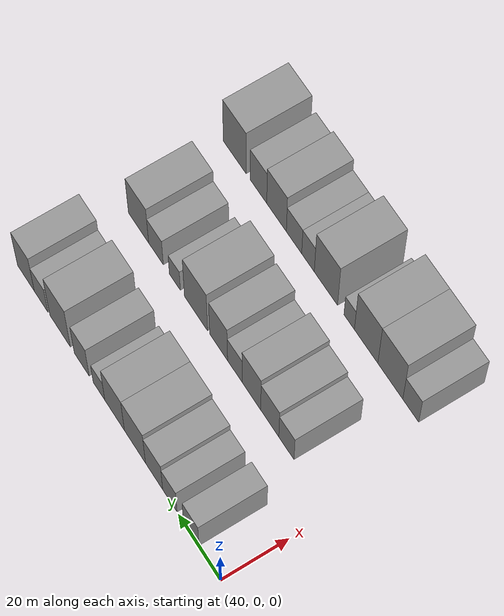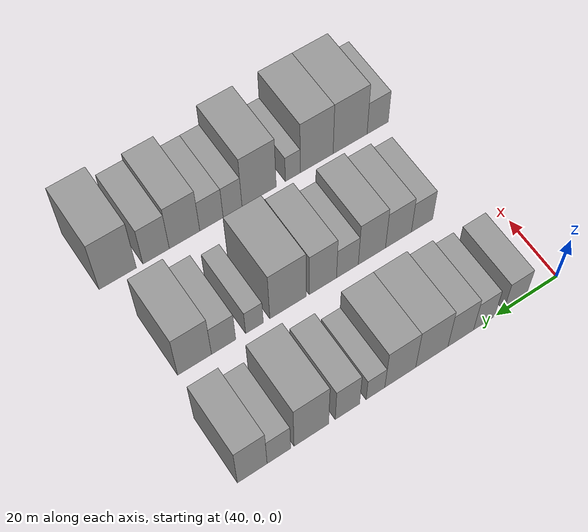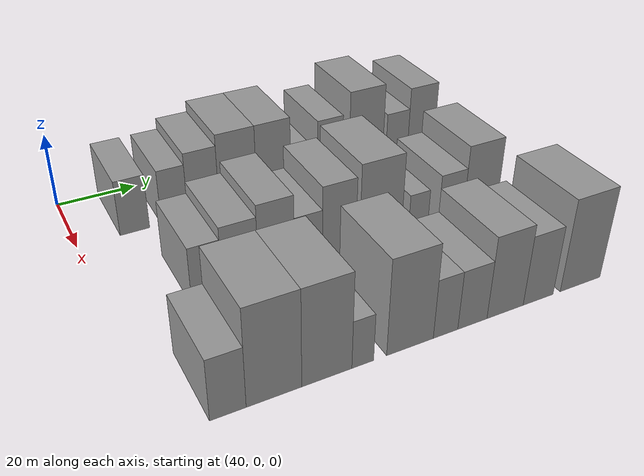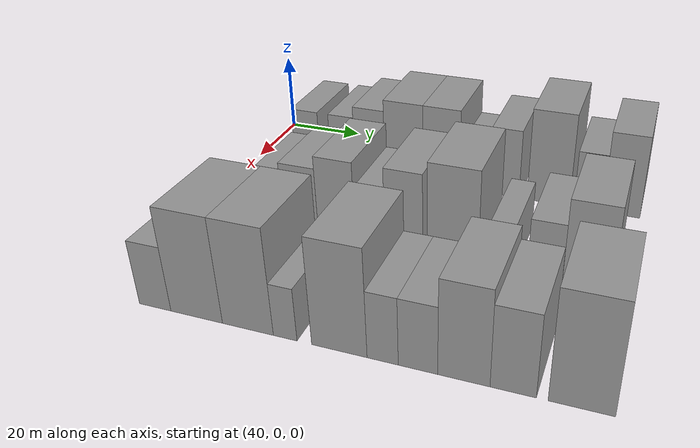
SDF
<sdf version="1.6">
 <world name="default">
  <model name="building_40">
   <static>1</static>
   <pose>50.0000 14.0486 0 0.000000 0.000000 0.000000</pose>
   <link name="link">
    <pose>0 0 7.50 0 0 0</pose>
    <collision name="collision"><geometry><box><size>20.0000 7.3120 15.0000</size></box></geometry></collision>
    <visual name="visual">
     <cast_shadows>0</cast_shadows>
     <geometry><box><size>20.0000 7.3120 15.0000</size></box></geometry>
     <material>
      <script>
       <uri>model://grey_wall/materials/scripts</uri>
       <uri>model://grey_wall/materials/textures</uri>
       <name>vrc/grey_wall</name>
      </script>
     </material>
    </visual>
   </link>
  </model>
  <model name="building_41">
   <static>1</static>
   <pose>50.0000 24.1313 0 0.000000 0.000000 0.000000</pose>
   <link name="link">
    <pose>0 0 7.50 0 0 0</pose>
    <collision name="collision"><geometry><box><size>20.0000 6.8536 15.0000</size></box></geometry></collision>
    <visual name="visual">
     <cast_shadows>0</cast_shadows>
     <geometry><box><size>20.0000 6.8536 15.0000</size></box></geometry>
     <material>
      <script>
       <uri>model://grey_wall/materials/scripts</uri>
       <uri>model://grey_wall/materials/textures</uri>
       <name>vrc/grey_wall</name>
      </script>
     </material>
    </visual>
   </link>
  </model>
  <model name="building_42">
   <static>1</static>
   <pose>50.0000 31.6831 0 0.000000 0.000000 0.000000</pose>
   <link name="link">
    <pose>0 0 9.00 0 0 0</pose>
    <collision name="collision"><geometry><box><size>20.0000 8.2501 18.0000</size></box></geometry></collision>
    <visual name="visual">
     <cast_shadows>0</cast_shadows>
     <geometry><box><size>20.0000 8.2501 18.0000</size></box></geometry>
     <material>
      <script>
       <uri>model://grey_wall/materials/scripts</uri>
       <uri>model://grey_wall/materials/textures</uri>
       <name>vrc/grey_wall</name>
      </script>
     </material>
    </visual>
   </link>
  </model>
  <model name="building_43">
   <static>1</static>
   <pose>50.0000 40.9105 0 0.000000 0.000000 0.000000</pose>
   <link name="link">
    <pose>0 0 10.50 0 0 0</pose>
    <collision name="collision"><geometry><box><size>20.0000 10.2048 21.0000</size></box></geometry></collision>
    <visual name="visual">
     <cast_shadows>0</cast_shadows>
     <geometry><box><size>20.0000 10.2048 21.0000</size></box></geometry>
     <material>
      <script>
       <uri>model://grey_wall/materials/scripts</uri>
       <uri>model://grey_wall/materials/textures</uri>
       <name>vrc/grey_wall</name>
      </script>
     </material>
    </visual>
   </link>
  </model>
  <model name="building_44">
   <static>1</static>
   <pose>50.0000 50.8271 0 0.000000 0.000000 0.000000</pose>
   <link name="link">
    <pose>0 0 10.50 0 0 0</pose>
    <collision name="collision"><geometry><box><size>20.0000 9.6284 21.0000</size></box></geometry></collision>
    <visual name="visual">
     <cast_shadows>0</cast_shadows>
     <geometry><box><size>20.0000 9.6284 21.0000</size></box></geometry>
     <material>
      <script>
       <uri>model://grey_wall/materials/scripts</uri>
       <uri>model://grey_wall/materials/textures</uri>
       <name>vrc/grey_wall</name>
      </script>
     </material>
    </visual>
   </link>
  </model>
  <model name="building_45">
   <static>1</static>
   <pose>50.0000 58.5108 0 0.000000 0.000000 0.000000</pose>
   <link name="link">
    <pose>0 0 6.00 0 0 0</pose>
    <collision name="collision"><geometry><box><size>20.0000 5.7389 12.0000</size></box></geometry></collision>
    <visual name="visual">
     <cast_shadows>0</cast_shadows>
     <geometry><box><size>20.0000 5.7389 12.0000</size></box></geometry>
     <material>
      <script>
       <uri>model://grey_wall/materials/scripts</uri>
       <uri>model://grey_wall/materials/textures</uri>
       <name>vrc/grey_wall</name>
      </script>
     </material>
    </visual>
   </link>
  </model>
  <model name="building_46">
   <static>1</static>
   <pose>50.0000 67.0606 0 0.000000 0.000000 0.000000</pose>
   <link name="link">
    <pose>0 0 9.00 0 0 0</pose>
    <collision name="collision"><geometry><box><size>20.0000 7.3606 18.0000</size></box></geometry></collision>
    <visual name="visual">
     <cast_shadows>0</cast_shadows>
     <geometry><box><size>20.0000 7.3606 18.0000</size></box></geometry>
     <material>
      <script>
       <uri>model://grey_wall/materials/scripts</uri>
       <uri>model://grey_wall/materials/textures</uri>
       <name>vrc/grey_wall</name>
      </script>
     </material>
    </visual>
   </link>
  </model>
  <model name="building_47">
   <static>1</static>
   <pose>50.0000 77.8903 0 0.000000 0.000000 0.000000</pose>
   <link name="link">
    <pose>0 0 12.00 0 0 0</pose>
    <collision name="collision"><geometry><box><size>20.0000 10.2989 24.0000</size></box></geometry></collision>
    <visual name="visual">
     <cast_shadows>0</cast_shadows>
     <geometry><box><size>20.0000 10.2989 24.0000</size></box></geometry>
     <material>
      <script>
       <uri>model://grey_wall/materials/scripts</uri>
       <uri>model://grey_wall/materials/textures</uri>
       <name>vrc/grey_wall</name>
      </script>
     </material>
    </visual>
   </link>
  </model>
  <model name="building_48">
   <static>1</static>
   <pose>50.0000 87.4814 0 0.000000 0.000000 0.000000</pose>
   <link name="link">
    <pose>0 0 7.50 0 0 0</pose>
    <collision name="collision"><geometry><box><size>20.0000 6.8834 15.0000</size></box></geometry></collision>
    <visual name="visual">
     <cast_shadows>0</cast_shadows>
     <geometry><box><size>20.0000 6.8834 15.0000</size></box></geometry>
     <material>
      <script>
       <uri>model://grey_wall/materials/scripts</uri>
       <uri>model://grey_wall/materials/textures</uri>
       <name>vrc/grey_wall</name>
      </script>
     </material>
    </visual>
   </link>
  </model>
  <model name="building_49">
   <static>1</static>
   <pose>50.0000 95.2231 0 0.000000 0.000000 0.000000</pose>
   <link name="link">
    <pose>0 0 10.50 0 0 0</pose>
    <collision name="collision"><geometry><box><size>20.0000 8.5998 21.0000</size></box></geometry></collision>
    <visual name="visual">
     <cast_shadows>0</cast_shadows>
     <geometry><box><size>20.0000 8.5998 21.0000</size></box></geometry>
     <material>
      <script>
       <uri>model://grey_wall/materials/scripts</uri>
       <uri>model://grey_wall/materials/textures</uri>
       <name>vrc/grey_wall</name>
      </script>
     </material>
    </visual>
   </link>
  </model>
  <model name="building_115">
   <static>1</static>
   <pose>82.0000 20.3005 0 0.000000 0.000000 0.000000</pose>
   <link name="link">
    <pose>0 0 7.50 0 0 0</pose>
    <collision name="collision"><geometry><box><size>20.0000 7.0862 15.0000</size></box></geometry></collision>
    <visual name="visual">
     <cast_shadows>0</cast_shadows>
     <geometry><box><size>20.0000 7.0862 15.0000</size></box></geometry>
     <material>
      <script>
       <uri>model://grey_wall/materials/scripts</uri>
       <uri>model://grey_wall/materials/textures</uri>
       <name>vrc/grey_wall</name>
      </script>
     </material>
    </visual>
   </link>
  </model>
  <model name="building_116">
   <static>1</static>
   <pose>82.0000 28.1052 0 0.000000 0.000000 0.000000</pose>
   <link name="link">
    <pose>0 0 9.00 0 0 0</pose>
    <collision name="collision"><geometry><box><size>20.0000 8.5234 18.0000</size></box></geometry></collision>
    <visual name="visual">
     <cast_shadows>0</cast_shadows>
     <geometry><box><size>20.0000 8.5234 18.0000</size></box></geometry>
     <material>
      <script>
       <uri>model://grey_wall/materials/scripts</uri>
       <uri>model://grey_wall/materials/textures</uri>
       <name>vrc/grey_wall</name>
      </script>
     </material>
    </visual>
   </link>
  </model>
  <model name="building_117">
   <static>1</static>
   <pose>82.0000 36.7835 0 0.000000 0.000000 0.000000</pose>
   <link name="link">
    <pose>0 0 10.50 0 0 0</pose>
    <collision name="collision"><geometry><box><size>20.0000 8.8331 21.0000</size></box></geometry></collision>
    <visual name="visual">
     <cast_shadows>0</cast_shadows>
     <geometry><box><size>20.0000 8.8331 21.0000</size></box></geometry>
     <material>
      <script>
       <uri>model://grey_wall/materials/scripts</uri>
       <uri>model://grey_wall/materials/textures</uri>
       <name>vrc/grey_wall</name>
      </script>
     </material>
    </visual>
   </link>
  </model>
  <model name="building_118">
   <static>1</static>
   <pose>82.0000 44.6955 0 0.000000 0.000000 0.000000</pose>
   <link name="link">
    <pose>0 0 7.50 0 0 0</pose>
    <collision name="collision"><geometry><box><size>20.0000 6.9909 15.0000</size></box></geometry></collision>
    <visual name="visual">
     <cast_shadows>0</cast_shadows>
     <geometry><box><size>20.0000 6.9909 15.0000</size></box></geometry>
     <material>
      <script>
       <uri>model://grey_wall/materials/scripts</uri>
       <uri>model://grey_wall/materials/textures</uri>
       <name>vrc/grey_wall</name>
      </script>
     </material>
    </visual>
   </link>
  </model>
  <model name="building_119">
   <static>1</static>
   <pose>82.0000 52.5071 0 0.000000 0.000000 0.000000</pose>
   <link name="link">
    <pose>0 0 10.50 0 0 0</pose>
    <collision name="collision"><geometry><box><size>20.0000 8.6322 21.0000</size></box></geometry></collision>
    <visual name="visual">
     <cast_shadows>0</cast_shadows>
     <geometry><box><size>20.0000 8.6322 21.0000</size></box></geometry>
     <material>
      <script>
       <uri>model://grey_wall/materials/scripts</uri>
       <uri>model://grey_wall/materials/textures</uri>
       <name>vrc/grey_wall</name>
      </script>
     </material>
    </visual>
   </link>
  </model>
  <model name="building_120">
   <static>1</static>
   <pose>82.0000 63.4672 0 0.000000 0.000000 0.000000</pose>
   <link name="link">
    <pose>0 0 12.00 0 0 0</pose>
    <collision name="collision"><geometry><box><size>20.0000 11.2880 24.0000</size></box></geometry></collision>
    <visual name="visual">
     <cast_shadows>0</cast_shadows>
     <geometry><box><size>20.0000 11.2880 24.0000</size></box></geometry>
     <material>
      <script>
       <uri>model://grey_wall/materials/scripts</uri>
       <uri>model://grey_wall/materials/textures</uri>
       <name>vrc/grey_wall</name>
      </script>
     </material>
    </visual>
   </link>
  </model>
  <model name="building_121">
   <static>1</static>
   <pose>82.0000 73.8252 0 0.000000 0.000000 0.000000</pose>
   <link name="link">
    <pose>0 0 6.00 0 0 0</pose>
    <collision name="collision"><geometry><box><size>20.0000 5.4280 12.0000</size></box></geometry></collision>
    <visual name="visual">
     <cast_shadows>0</cast_shadows>
     <geometry><box><size>20.0000 5.4280 12.0000</size></box></geometry>
     <material>
      <script>
       <uri>model://grey_wall/materials/scripts</uri>
       <uri>model://grey_wall/materials/textures</uri>
       <name>vrc/grey_wall</name>
      </script>
     </material>
    </visual>
   </link>
  </model>
  <model name="building_122">
   <static>1</static>
   <pose>82.0000 83.1907 0 0.000000 0.000000 0.000000</pose>
   <link name="link">
    <pose>0 0 7.50 0 0 0</pose>
    <collision name="collision"><geometry><box><size>20.0000 7.3030 15.0000</size></box></geometry></collision>
    <visual name="visual">
     <cast_shadows>0</cast_shadows>
     <geometry><box><size>20.0000 7.3030 15.0000</size></box></geometry>
     <material>
      <script>
       <uri>model://grey_wall/materials/scripts</uri>
       <uri>model://grey_wall/materials/textures</uri>
       <name>vrc/grey_wall</name>
      </script>
     </material>
    </visual>
   </link>
  </model>
  <model name="building_123">
   <static>1</static>
   <pose>82.0000 91.8933 0 0.000000 0.000000 0.000000</pose>
   <link name="link">
    <pose>0 0 10.50 0 0 0</pose>
    <collision name="collision"><geometry><box><size>20.0000 10.1023 21.0000</size></box></geometry></collision>
    <visual name="visual">
     <cast_shadows>0</cast_shadows>
     <geometry><box><size>20.0000 10.1023 21.0000</size></box></geometry>
     <material>
      <script>
       <uri>model://grey_wall/materials/scripts</uri>
       <uri>model://grey_wall/materials/textures</uri>
       <name>vrc/grey_wall</name>
      </script>
     </material>
    </visual>
   </link>
  </model>
  <model name="building_194">
   <static>1</static>
   <pose>114.0000 12.0042 0 0.000000 0.000000 0.000000</pose>
   <link name="link">
    <pose>0 0 7.50 0 0 0</pose>
    <collision name="collision"><geometry><box><size>20.0000 7.2663 15.0000</size></box></geometry></collision>
    <visual name="visual">
     <cast_shadows>0</cast_shadows>
     <geometry><box><size>20.0000 7.2663 15.0000</size></box></geometry>
     <material>
      <script>
       <uri>model://grey_wall/materials/scripts</uri>
       <uri>model://grey_wall/materials/textures</uri>
       <name>vrc/grey_wall</name>
      </script>
     </material>
    </visual>
   </link>
  </model>
  <model name="building_195">
   <static>1</static>
   <pose>114.0000 21.3939 0 0.000000 0.000000 0.000000</pose>
   <link name="link">
    <pose>0 0 12.00 0 0 0</pose>
    <collision name="collision"><geometry><box><size>20.0000 11.5131 24.0000</size></box></geometry></collision>
    <visual name="visual">
     <cast_shadows>0</cast_shadows>
     <geometry><box><size>20.0000 11.5131 24.0000</size></box></geometry>
     <material>
      <script>
       <uri>model://grey_wall/materials/scripts</uri>
       <uri>model://grey_wall/materials/textures</uri>
       <name>vrc/grey_wall</name>
      </script>
     </material>
    </visual>
   </link>
  </model>
  <model name="building_196">
   <static>1</static>
   <pose>114.0000 32.6145 0 0.000000 0.000000 0.000000</pose>
   <link name="link">
    <pose>0 0 12.00 0 0 0</pose>
    <collision name="collision"><geometry><box><size>20.0000 10.9281 24.0000</size></box></geometry></collision>
    <visual name="visual">
     <cast_shadows>0</cast_shadows>
     <geometry><box><size>20.0000 10.9281 24.0000</size></box></geometry>
     <material>
      <script>
       <uri>model://grey_wall/materials/scripts</uri>
       <uri>model://grey_wall/materials/textures</uri>
       <name>vrc/grey_wall</name>
      </script>
     </material>
    </visual>
   </link>
  </model>
  <model name="building_197">
   <static>1</static>
   <pose>114.0000 40.5374 0 0.000000 0.000000 0.000000</pose>
   <link name="link">
    <pose>0 0 6.00 0 0 0</pose>
    <collision name="collision"><geometry><box><size>20.0000 4.9178 12.0000</size></box></geometry></collision>
    <visual name="visual">
     <cast_shadows>0</cast_shadows>
     <geometry><box><size>20.0000 4.9178 12.0000</size></box></geometry>
     <material>
      <script>
       <uri>model://grey_wall/materials/scripts</uri>
       <uri>model://grey_wall/materials/textures</uri>
       <name>vrc/grey_wall</name>
      </script>
     </material>
    </visual>
   </link>
  </model>
  <model name="building_198">
   <static>1</static>
   <pose>114.0000 51.5290 0 0.000000 0.000000 0.000000</pose>
   <link name="link">
    <pose>0 0 12.00 0 0 0</pose>
    <collision name="collision"><geometry><box><size>20.0000 11.0653 24.0000</size></box></geometry></collision>
    <visual name="visual">
     <cast_shadows>0</cast_shadows>
     <geometry><box><size>20.0000 11.0653 24.0000</size></box></geometry>
     <material>
      <script>
       <uri>model://grey_wall/materials/scripts</uri>
       <uri>model://grey_wall/materials/textures</uri>
       <name>vrc/grey_wall</name>
      </script>
     </material>
    </visual>
   </link>
  </model>
  <model name="building_199">
   <static>1</static>
   <pose>114.0000 60.0744 0 0.000000 0.000000 0.000000</pose>
   <link name="link">
    <pose>0 0 7.50 0 0 0</pose>
    <collision name="collision"><geometry><box><size>20.0000 6.0256 15.0000</size></box></geometry></collision>
    <visual name="visual">
     <cast_shadows>0</cast_shadows>
     <geometry><box><size>20.0000 6.0256 15.0000</size></box></geometry>
     <material>
      <script>
       <uri>model://grey_wall/materials/scripts</uri>
       <uri>model://grey_wall/materials/textures</uri>
       <name>vrc/grey_wall</name>
      </script>
     </material>
    </visual>
   </link>
  </model>
  <model name="building_200">
   <static>1</static>
   <pose>114.0000 66.7854 0 0.000000 0.000000 0.000000</pose>
   <link name="link">
    <pose>0 0 7.50 0 0 0</pose>
    <collision name="collision"><geometry><box><size>20.0000 7.3966 15.0000</size></box></geometry></collision>
    <visual name="visual">
     <cast_shadows>0</cast_shadows>
     <geometry><box><size>20.0000 7.3966 15.0000</size></box></geometry>
     <material>
      <script>
       <uri>model://grey_wall/materials/scripts</uri>
       <uri>model://grey_wall/materials/textures</uri>
       <name>vrc/grey_wall</name>
      </script>
     </material>
    </visual>
   </link>
  </model>
  <model name="building_201">
   <static>1</static>
   <pose>114.0000 75.2431 0 0.000000 0.000000 0.000000</pose>
   <link name="link">
    <pose>0 0 10.50 0 0 0</pose>
    <collision name="collision"><geometry><box><size>20.0000 9.5188 21.0000</size></box></geometry></collision>
    <visual name="visual">
     <cast_shadows>0</cast_shadows>
     <geometry><box><size>20.0000 9.5188 21.0000</size></box></geometry>
     <material>
      <script>
       <uri>model://grey_wall/materials/scripts</uri>
       <uri>model://grey_wall/materials/textures</uri>
       <name>vrc/grey_wall</name>
      </script>
     </material>
    </visual>
   </link>
  </model>
  <model name="building_202">
   <static>1</static>
   <pose>114.0000 84.0705 0 0.000000 0.000000 0.000000</pose>
   <link name="link">
    <pose>0 0 9.00 0 0 0</pose>
    <collision name="collision"><geometry><box><size>20.0000 8.1359 18.0000</size></box></geometry></collision>
    <visual name="visual">
     <cast_shadows>0</cast_shadows>
     <geometry><box><size>20.0000 8.1359 18.0000</size></box></geometry>
     <material>
      <script>
       <uri>model://grey_wall/materials/scripts</uri>
       <uri>model://grey_wall/materials/textures</uri>
       <name>vrc/grey_wall</name>
      </script>
     </material>
    </visual>
   </link>
  </model>
  <model name="building_203">
   <static>1</static>
   <pose>114.0000 95.7910 0 0.000000 0.000000 0.000000</pose>
   <link name="link">
    <pose>0 0 12.00 0 0 0</pose>
    <collision name="collision"><geometry><box><size>20.0000 11.3050 24.0000</size></box></geometry></collision>
    <visual name="visual">
     <cast_shadows>0</cast_shadows>
     <geometry><box><size>20.0000 11.3050 24.0000</size></box></geometry>
     <material>
      <script>
       <uri>model://grey_wall/materials/scripts</uri>
       <uri>model://grey_wall/materials/textures</uri>
       <name>vrc/grey_wall</name>
      </script>
     </material>
    </visual>
   </link>
  </model>
 </world>
</sdf>
